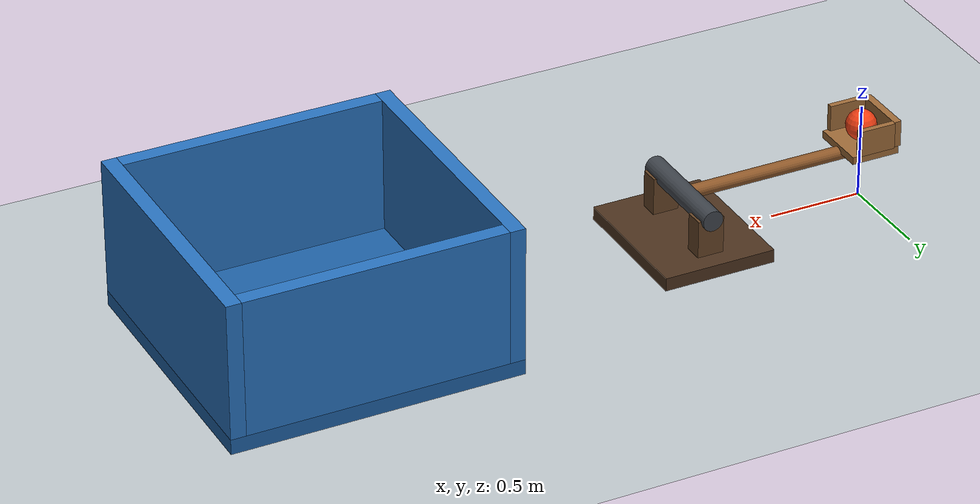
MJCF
<mujoco model="catapult_into_bucket">
  <compiler angle="degree" autolimits="true"/>
  <option timestep="0.002" gravity="0 0 -9.81" integrator="implicitfast" solver="Newton" iterations="100" cone="elliptic"/>
  <size njmax="2000" nconmax="300"/>

  <visual>
    <headlight ambient="0.4 0.4 0.4" diffuse="0.7 0.7 0.7" specular="0.2 0.2 0.2"/>
    <map znear="0.01" zfar="30"/>
  </visual>

  <worldbody>
    <light name="key_light" pos="1 -3 5" dir="0 0 -1" diffuse="0.9 0.9 0.9"/>
    <camera name="overview" pos="2 -6 3" xyaxes="1 0 0 0 0.4 0.9165"/>

    <geom name="floor" type="plane" pos="0 0 0" size="8 5 0.1" rgba="0.75 0.78 0.80 1" friction="1 0.02 0.025" condim="6"/>

    <!-- The motor accelerates the arm from rest.
         The upper stop arrests the arm, leaving the ball airborne. -->
    <body name="catapult_frame" pos="1 0 0">
      <geom name="catapult_base" type="box" pos="0 0 0.035" size="0.30 0.38 0.035" rgba="0.30 0.20 0.12 1"/>
      <geom name="catapult_support_left" type="box" pos="0 0.23 0.15" size="0.07 0.05 0.12" rgba="0.40 0.27 0.15 1"/>
      <geom name="catapult_support_right" type="box" pos="0 -0.23 0.15" size="0.07 0.05 0.12" rgba="0.40 0.27 0.15 1"/>
      <geom name="catapult_axle" type="cylinder" pos="0 0 0.27" quat="0.70710678 0.70710678 0 0" size="0.055 0.30" rgba="0.25 0.27 0.30 1"/>

      <body name="catapult_arm" pos="0 0 0.27">
        <inertial pos="-0.45 0 0" mass="0.6" diaginertia="0.01 0.09 0.09"/>
        <joint name="catapult_hinge" type="hinge" axis="0 1 0" range="-2 45" damping="0.05" frictionloss="0.02" solreflimit="0.004 1" solimplimit="0.999 0.999 0.001"/>
        <geom name="catapult_arm_beam" type="capsule" fromto="0 0 0 -1 0 0" size="0.035" rgba="0.55 0.34 0.16 1"/>
        <geom name="catapult_spoon_bottom" type="box" pos="-1 0 0.03" size="0.13 0.15 0.02" rgba="0.62 0.42 0.22 1"/>
        <geom name="catapult_spoon_outer_lip" type="box" pos="-1.12 0 0.12" size="0.02 0.15 0.07" rgba="0.62 0.42 0.22 1"/>
        <geom name="catapult_spoon_left_lip" type="box" pos="-1 0.145 0.12" size="0.10 0.015 0.07" rgba="0.62 0.42 0.22 1"/>
        <geom name="catapult_spoon_right_lip" type="box" pos="-1 -0.145 0.12" size="0.10 0.015 0.07" rgba="0.62 0.42 0.22 1"/>
      </body>
    </body>

    <body name="ball" pos="0 0 0.4">
      <freejoint name="ball_free"/>
      <geom name="ball" type="sphere" size="0.08" mass="0.15" friction="1.1 0.02 0.025" condim="6" solref="0.008 1" solimp="0.95 0.99 0.001" rgba="0.95 0.25 0.08 1"/>
    </body>

    <!-- The bucket centre is exactly 3 m from the starting ball centre.
         The interior spans x = 2.32 to 3.68 m; the rim is at z = 0.8 m. -->
    <body name="bucket" pos="3 0 0.4">
      <geom name="bucket_bottom" type="box" pos="0 0 -0.36" size="0.76 0.73 0.04" friction="1.1 0.02 0.025" condim="6" solref="0.008 1" rgba="0.12 0.38 0.65 1"/>
      <geom name="bucket_near_wall" type="box" pos="-0.72 0 0.04" size="0.04 0.73 0.36" friction="1.1 0.02 0.025" condim="6" solref="0.008 1" rgba="0.16 0.45 0.75 1"/>
      <geom name="bucket_far_wall" type="box" pos="0.72 0 0.04" size="0.04 0.73 0.36" friction="1.1 0.02 0.025" condim="6" solref="0.008 1" rgba="0.16 0.45 0.75 1"/>
      <geom name="bucket_left_wall" type="box" pos="0 0.69 0.04" size="0.68 0.04 0.36" friction="1.1 0.02 0.025" condim="6" solref="0.008 1" rgba="0.16 0.45 0.75 1"/>
      <geom name="bucket_right_wall" type="box" pos="0 -0.69 0.04" size="0.68 0.04 0.36" friction="1.1 0.02 0.025" condim="6" solref="0.008 1" rgba="0.16 0.45 0.75 1"/>
    </body>
  </worldbody>

  <contact>
    <exclude body1="catapult_frame" body2="catapult_arm"/>
    <!-- Explicit normal-only contacts override the ball's high friction
         on the launching surfaces, without changing bucket friction. -->
    <pair name="ball_spoon_bottom_contact" geom1="ball" geom2="catapult_spoon_bottom" condim="1" solref="0.004 1" solimp="0.99 0.999 0.001"/>
    <pair name="ball_spoon_outer_contact" geom1="ball" geom2="catapult_spoon_outer_lip" condim="1" solref="0.004 1" solimp="0.99 0.999 0.001"/>
    <pair name="ball_spoon_left_contact" geom1="ball" geom2="catapult_spoon_left_lip" condim="1" solref="0.004 1" solimp="0.99 0.999 0.001"/>
    <pair name="ball_spoon_right_contact" geom1="ball" geom2="catapult_spoon_right_lip" condim="1" solref="0.004 1" solimp="0.99 0.999 0.001"/>
  </contact>

  <actuator>
    <motor name="catapult_drive" joint="catapult_hinge" gear="1" ctrllimited="true" ctrlrange="0 10"/>
  </actuator>

  <keyframe>
    <key name="start" qpos="0 0 0 0.4 1 0 0 0" qvel="0 0 0 0 0 0 0" ctrl="8.3"/>
  </keyframe>
</mujoco>
